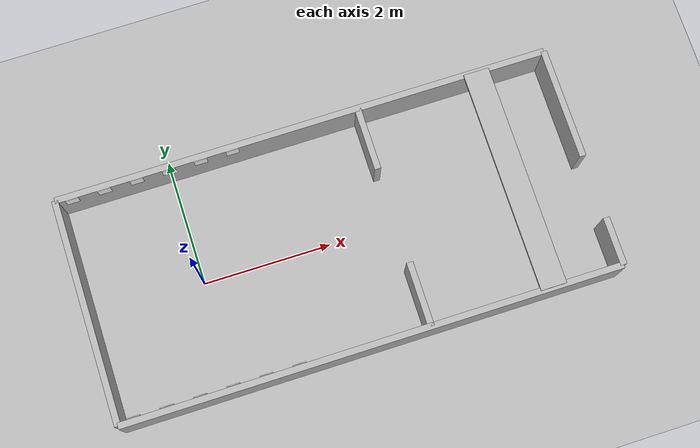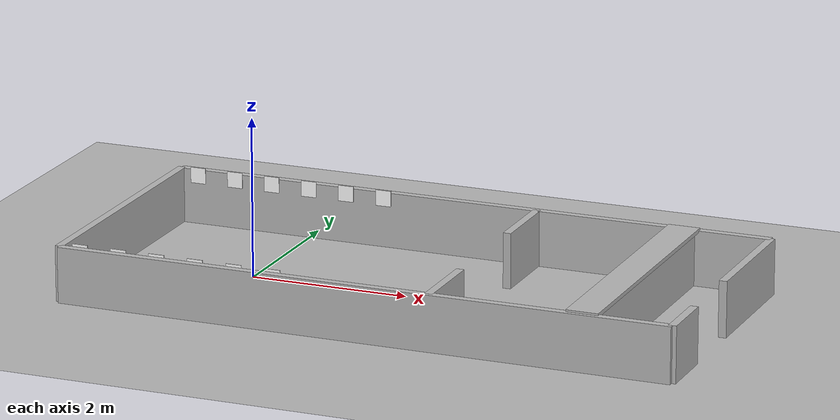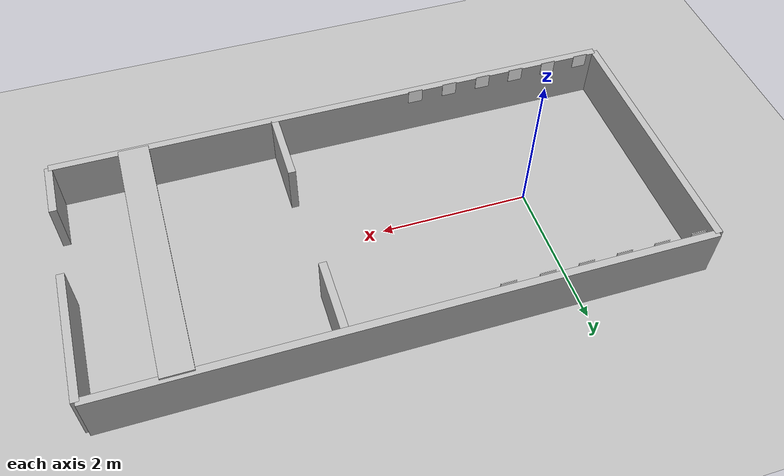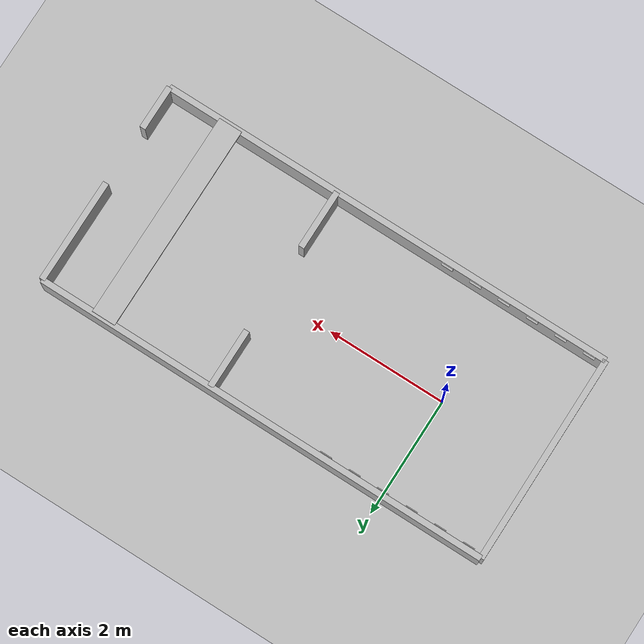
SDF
<sdf version="1.4">
 <world name="aisle">
  <physics name="1ms" type="ignored">
   <max_step_size>0.001</max_step_size>
   <real_time_factor>1.0</real_time_factor>
  </physics>
  <plugin filename="ignition-gazebo-physics-system" name="gz::sim::systems::Physics"/>
  <plugin filename="ignition-gazebo-user-commands-system" name="gz::sim::systems::UserCommands"/>
  <plugin filename="ignition-gazebo-scene-broadcaster-system" name="gz::sim::systems::SceneBroadcaster"/>
  <plugin filename="ignition-gazebo-sensors-system" name="gz::sim::systems::Sensors">
   <render_engine>ogre2</render_engine>
  </plugin>
  <scene><ambient>0.65 0.65 0.65 1</ambient><background>0.78 0.82 0.88 1</background></scene>
  <light type="directional" name="sun">
   <pose>0 0 10 0 0 0</pose>
   <diffuse>1.0 1.0 1.0 1</diffuse>
   <specular>0.35 0.35 0.35 1</specular>
   <attenuation>
    <range>1000</range>
    <constant>0.9</constant>
    <linear>0.01</linear>
    <quadratic>0.001</quadratic>
   </attenuation>
   <direction>-0.45 0.2 -0.87</direction>
  </light>
  <model name="ground_plane">
   <static>true</static>
   <link name="link">
    <collision name="collision">
     <geometry><plane><normal>0 0 1</normal><size>100 100</size></plane></geometry>
    </collision>
    <visual name="visual">
     <cast_shadows>false</cast_shadows>
     <geometry><plane><normal>0 0 1</normal><size>100 100</size></plane></geometry>
     <material>
      <ambient>0.72 0.72 0.72 1</ambient>
      <diffuse>0.72 0.72 0.72 1</diffuse>
      <specular>0.08 0.08 0.08 1</specular>
     </material>
    </visual>
   </link>
  </model>
  <model name="bin_0_tag">
   <static>true</static>
   <pose>-1.5 -1.6875 0.63 0 0 3.1415</pose>
   <link name="link">
    <visual name="visual">
     <geometry><box><size>0.2 0.01 0.2</size></box></geometry>
     <material><ambient>1 1 1 1</ambient><diffuse>1 1 1 1</diffuse></material>
    </visual>
   </link>
  </model>
  <model name="bin_1_tag">
   <static>true</static>
   <pose>-1.0 -1.6875 0.63 0 0 3.1415</pose>
   <link name="link">
    <visual name="visual">
     <geometry><box><size>0.2 0.01 0.2</size></box></geometry>
     <material><ambient>1 1 1 1</ambient><diffuse>1 1 1 1</diffuse></material>
    </visual>
   </link>
  </model>
  <model name="bin_2_tag">
   <static>true</static>
   <pose>-0.5 -1.6875 0.63 0 0 3.1415</pose>
   <link name="link">
    <visual name="visual">
     <geometry><box><size>0.2 0.01 0.2</size></box></geometry>
     <material><ambient>1 1 1 1</ambient><diffuse>1 1 1 1</diffuse></material>
    </visual>
   </link>
  </model>
  <model name="bin_3_tag">
   <static>true</static>
   <pose>0.0 -1.6875 0.63 0 0 3.1415</pose>
   <link name="link">
    <visual name="visual">
     <geometry><box><size>0.2 0.01 0.2</size></box></geometry>
     <material><ambient>1 1 1 1</ambient><diffuse>1 1 1 1</diffuse></material>
    </visual>
   </link>
  </model>
  <model name="bin_4_tag">
   <static>true</static>
   <pose>0.5 -1.6875 0.63 0 0 3.1415</pose>
   <link name="link">
    <visual name="visual">
     <geometry><box><size>0.2 0.01 0.2</size></box></geometry>
     <material><ambient>1 1 1 1</ambient><diffuse>1 1 1 1</diffuse></material>
    </visual>
   </link>
  </model>
  <model name="bin_5_tag">
   <static>true</static>
   <pose>1.0 -1.6875 0.63 0 0 3.1415</pose>
   <link name="link">
    <visual name="visual">
     <geometry><box><size>0.2 0.01 0.2</size></box></geometry>
     <material><ambient>1 1 1 1</ambient><diffuse>1 1 1 1</diffuse></material>
    </visual>
   </link>
  </model>
  <model name="bin_6_tag">
   <static>true</static>
   <pose>-1.5 1.6875 0.63 0 0 0</pose>
   <link name="link">
    <visual name="visual">
     <geometry><box><size>0.2 0.01 0.2</size></box></geometry>
     <material><ambient>1 1 1 1</ambient><diffuse>1 1 1 1</diffuse></material>
    </visual>
   </link>
  </model>
  <model name="bin_7_tag">
   <static>true</static>
   <pose>-1.0 1.6875 0.63 0 0 0</pose>
   <link name="link">
    <visual name="visual">
     <geometry><box><size>0.2 0.01 0.2</size></box></geometry>
     <material><ambient>1 1 1 1</ambient><diffuse>1 1 1 1</diffuse></material>
    </visual>
   </link>
  </model>
  <model name="bin_8_tag">
   <static>true</static>
   <pose>-0.5 1.6875 0.63 0 0 0</pose>
   <link name="link">
    <visual name="visual">
     <geometry><box><size>0.2 0.01 0.2</size></box></geometry>
     <material><ambient>1 1 1 1</ambient><diffuse>1 1 1 1</diffuse></material>
    </visual>
   </link>
  </model>
  <model name="bin_9_tag">
   <static>true</static>
   <pose>0.0 1.6875 0.63 0 0 0</pose>
   <link name="link">
    <visual name="visual">
     <geometry><box><size>0.2 0.01 0.2</size></box></geometry>
     <material><ambient>1 1 1 1</ambient><diffuse>1 1 1 1</diffuse></material>
    </visual>
   </link>
  </model>
  <model name="bin_10_tag">
   <static>true</static>
   <pose>0.5 1.6875 0.63 0 0 0</pose>
   <link name="link">
    <visual name="visual">
     <geometry><box><size>0.2 0.01 0.2</size></box></geometry>
     <material><ambient>1 1 1 1</ambient><diffuse>1 1 1 1</diffuse></material>
    </visual>
   </link>
  </model>
  <model name="bin_11_tag">
   <static>true</static>
   <pose>1.0 1.6875 0.63 0 0 0</pose>
   <link name="link">
    <visual name="visual">
     <geometry><box><size>0.2 0.01 0.2</size></box></geometry>
     <material><ambient>1 1 1 1</ambient><diffuse>1 1 1 1</diffuse></material>
    </visual>
   </link>
  </model>
  <model name="wall_1">
   <static>true</static>
   <pose>2.125 -1.75 0.35 0 0 0</pose>
   <link name="link">
    <collision name="visual"><geometry><box><size>7.75 0.1 0.7</size></box></geometry></collision>
    <visual name="visual"><geometry><box><size>7.75 0.1 0.7</size></box></geometry></visual>
   </link>
  </model>
  <model name="wall_2">
   <static>true</static>
   <pose>-1.75 0.0 0.35 0 0 0</pose>
   <link name="link">
    <collision name="visual"><geometry><box><size>0.1 3.5 0.7</size></box></geometry></collision>
    <visual name="visual"><geometry><box><size>0.1 3.5 0.7</size></box></geometry></visual>
   </link>
  </model>
  <model name="wall_3">
   <static>true</static>
   <pose>2.125 1.75 0.35 0 0 0</pose>
   <link name="link">
    <collision name="visual"><geometry><box><size>7.75 0.1 0.7</size></box></geometry></collision>
    <visual name="visual"><geometry><box><size>7.75 0.1 0.7</size></box></geometry></visual>
   </link>
  </model>
  <model name="wall_4">
   <static>true</static>
   <pose>3.0 1.25 0.35 0 0 0</pose>
   <link name="link">
    <collision name="visual"><geometry><box><size>0.1 1.0 0.7</size></box></geometry></collision>
    <visual name="visual"><geometry><box><size>0.1 1.0 0.7</size></box></geometry></visual>
   </link>
  </model>
  <model name="wall_5">
   <static>true</static>
   <pose>3.0 -1.25 0.35 0 0 0</pose>
   <link name="link">
    <collision name="visual"><geometry><box><size>0.1 1.0 0.7</size></box></geometry></collision>
    <visual name="visual"><geometry><box><size>0.1 1.0 0.7</size></box></geometry></visual>
   </link>
  </model>
  <model name="wall_6">
   <static>true</static>
   <pose>6.0 -1.375 0.35 0 0 0</pose>
   <link name="link">
    <collision name="visual"><geometry><box><size>0.1 0.75 0.7</size></box></geometry></collision>
    <visual name="visual"><geometry><box><size>0.1 0.75 0.7</size></box></geometry></visual>
   </link>
  </model>
  <model name="wall_7">
   <static>true</static>
   <pose>6.0 0.875 0.35 0 0 0</pose>
   <link name="link">
    <collision name="visual"><geometry><box><size>0.1 1.75 0.7</size></box></geometry></collision>
    <visual name="visual"><geometry><box><size>0.1 1.75 0.7</size></box></geometry></visual>
   </link>
  </model>
  <model name="wall_8">
   <static>true</static>
   <pose>5.0 0.0 0.35 0 0 0</pose>
   <link name="link">
    <collision name="visual"><geometry><box><size>0.1 3.5 0.7</size></box></geometry></collision>
    <visual name="visual"><geometry><box><size>0.1 3.5 0.7</size></box></geometry></visual>
   </link>
  </model>
  <model name="counter_top">
   <static>true</static>
   <pose>4.9 0 0.7 0 0 0</pose>
   <link name="link">
    <collision name="collision"><geometry><box><size>0.4 3.5 0.05</size></box></geometry></collision>
    <visual name="visual"><geometry><box><size>0.4 3.5 0.05</size></box></geometry></visual>
   </link>
  </model>
 </world>
</sdf>
